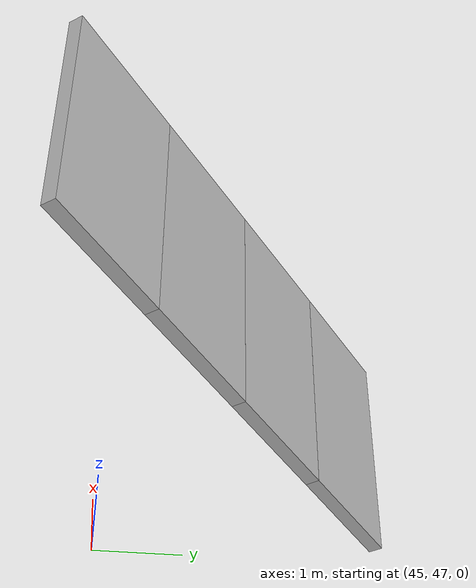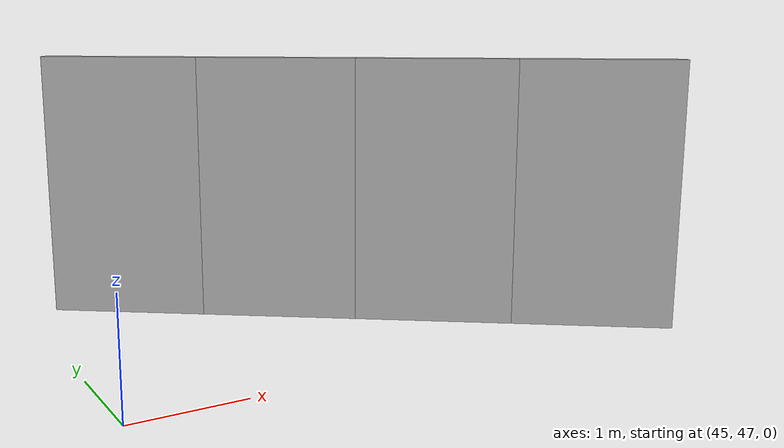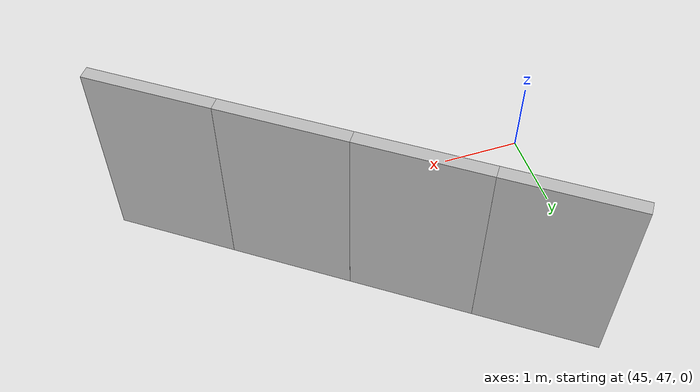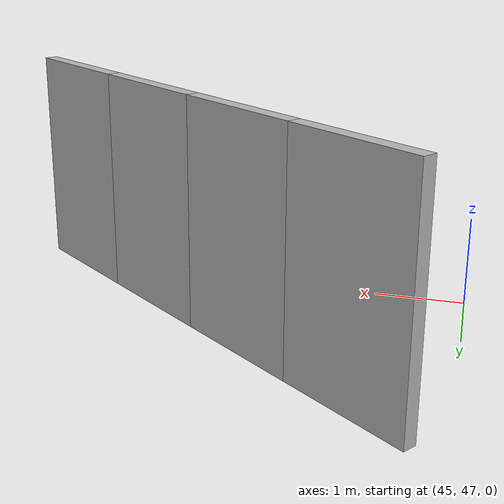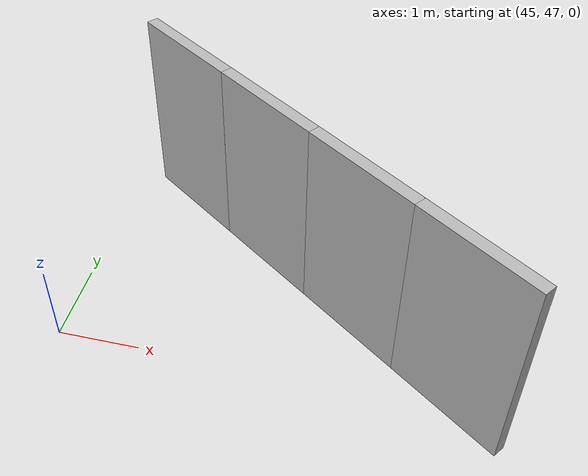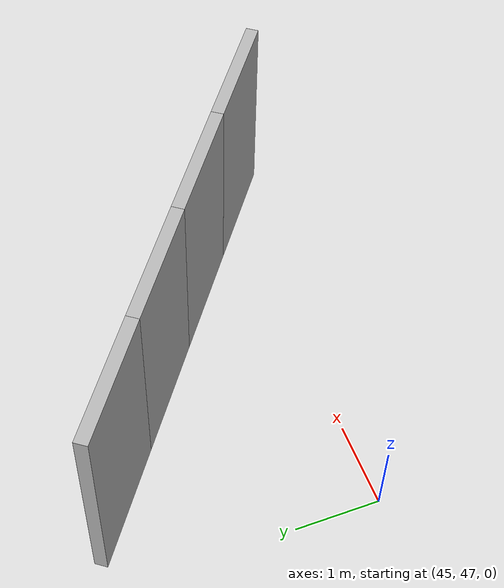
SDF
<?xml version="1.0" ?>
<sdf version="1.6">
  <model name="sps_3742">
    <pose frame="">0 0 0 0 -0 0</pose>
    <static>1</static>
    <self_collide>0</self_collide>
    <allow_auto_disable>0</allow_auto_disable>
    <link name="Wall10513">
      <kinematic>0</kinematic>
      <gravity>1</gravity>
      <self_collide>0</self_collide>
      <collision name="collision">
        <geometry>
          <box>
            <size>1.49647 0.15 2.5</size>
          </box>
        </geometry>
        <pose frame="">0 0 0 0 -0 0</pose>
      </collision>
      <visual name="visual">
        <geometry>
          <box>
            <size>1.49647 0.15 2.5</size>
          </box>
        </geometry>
        <pose frame="">0 0 0 0 -0 0</pose>
        <cast_shadows>1</cast_shadows>
        <transparency>0.0</transparency>
      </visual>
      <pose frame="">49.5561 47.0121 1.25 0 -0 2.50728</pose>
    </link>
    <link name="Wall10514">
      <kinematic>0</kinematic>
      <gravity>1</gravity>
      <self_collide>0</self_collide>
      <collision name="collision">
        <geometry>
          <box>
            <size>1.49649 0.15 2.5</size>
          </box>
        </geometry>
        <pose frame="">0 0 0 0 -0 0</pose>
      </collision>
      <visual name="visual">
        <geometry>
          <box>
            <size>1.49649 0.15 2.5</size>
          </box>
        </geometry>
        <pose frame="">0 0 0 0 -0 0</pose>
        <cast_shadows>1</cast_shadows>
        <transparency>0.0</transparency>
      </visual>
      <pose frame="">48.3501 47.898 1.25 0 -0 2.50886</pose>
    </link>
    <link name="Wall10515">
      <kinematic>0</kinematic>
      <gravity>1</gravity>
      <self_collide>0</self_collide>
      <collision name="collision">
        <geometry>
          <box>
            <size>1.49661 0.15 2.5</size>
          </box>
        </geometry>
        <pose frame="">0 0 0 0 -0 0</pose>
      </collision>
      <visual name="visual">
        <geometry>
          <box>
            <size>1.49661 0.15 2.5</size>
          </box>
        </geometry>
        <pose frame="">0 0 0 0 -0 0</pose>
        <cast_shadows>1</cast_shadows>
        <transparency>0.0</transparency>
      </visual>
      <pose frame="">47.1426 48.7821 1.25 0 -0 2.51033</pose>
    </link>
    <link name="Wall10516">
      <kinematic>0</kinematic>
      <gravity>1</gravity>
      <self_collide>0</self_collide>
      <collision name="collision">
        <geometry>
          <box>
            <size>1.49652 0.15 2.5</size>
          </box>
        </geometry>
        <pose frame="">0 0 0 0 -0 0</pose>
      </collision>
      <visual name="visual">
        <geometry>
          <box>
            <size>1.49652 0.15 2.5</size>
          </box>
        </geometry>
        <pose frame="">0 0 0 0 -0 0</pose>
        <cast_shadows>1</cast_shadows>
        <transparency>0.0</transparency>
      </visual>
      <pose frame="">45.9337 49.6643 1.25 0 -0 2.51201</pose>
    </link>
  </model>
</sdf>
